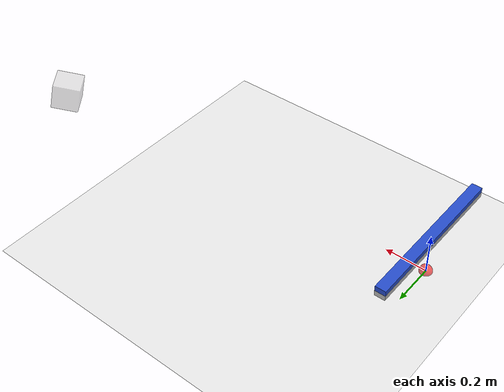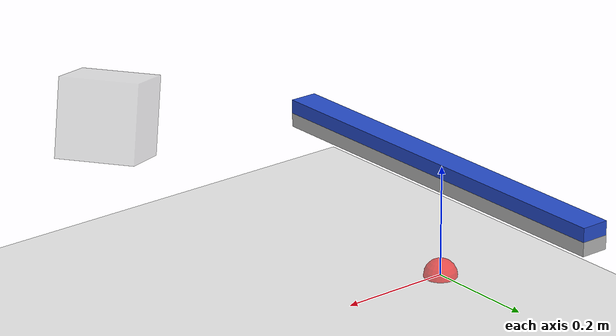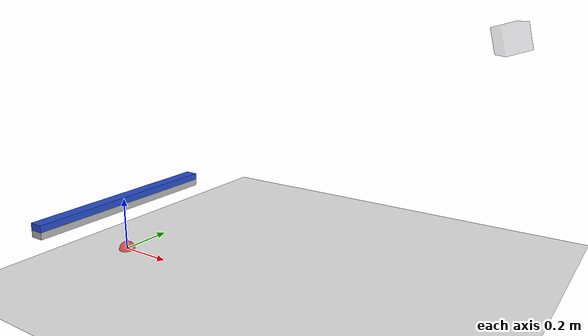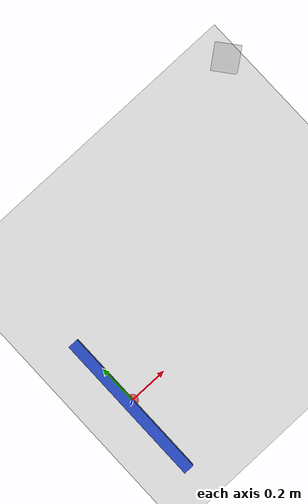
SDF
<sdf version="1.6">
 <world name="default">
  <include><uri>model://RightHandTarget</uri></include>
  <light name="sun" type="directional">
   <pose>0 0 10 0 -0 0</pose>
   <diffuse>0.8 0.8 0.8 1</diffuse>
   <specular>0.2 0.2 0.2 1</specular>
   <attenuation>
    <range>1000</range>
    <constant>0.9</constant>
    <linear>0.01</linear>
    <quadratic>0.001</quadratic>
   </attenuation>
   <direction>-0.5 0.1 -0.9</direction>
  </light>
  <model name="ground_plane">
   <static>1</static>
   <link name="link">
    <collision name="collision">
     <geometry><plane><normal>0 0 1</normal><size>100 100</size></plane></geometry>
     <surface><friction><ode><mu>100</mu><mu2>50</mu2></ode></friction></surface>
    </collision>
    <visual name="visual">
     <cast_shadows>0</cast_shadows>
     <geometry><plane><normal>0 0 1</normal><size>100 100</size></plane></geometry>
     <material>
      <script><uri>file://media/materials/scripts/gazebo.material</uri><name>Gazebo/White</name></script>
     </material>
    </visual>
   </link>
  </model>
  <physics name="default_physics" default="0" type="ode">
   <max_step_size>0.001</max_step_size>
   <real_time_factor>1</real_time_factor>
   <real_time_update_rate>1000</real_time_update_rate>
  </physics>
  <scene><ambient>1 1 1 1</ambient><background>1 1 1 1</background><shadows>1</shadows></scene>
  <spherical_coordinates>
   <surface_model>EARTH_WGS84</surface_model>
   <latitude_deg>0</latitude_deg>
   <longitude_deg>0</longitude_deg>
   <elevation>0</elevation>
   <heading_deg>0</heading_deg>
  </spherical_coordinates>
  <model name="chair">
   <pose>0 0 1e-06 0 -0 0</pose>
   <link name="chair::low_part">
    <pose>0 0 0.18 0 -0 0</pose>
    <inertial>
     <mass>1</mass>
     <inertia><ixx>1</ixx><ixy>0</ixy><ixz>0</ixz><iyy>1</iyy><iyz>0</iyz><izz>1</izz></inertia>
    </inertial>
    <collision name="collision_low"><geometry><box><size>0.05 0.75 0.025</size></box></geometry></collision>
    <visual name="visual_low"><geometry><box><size>0.05 0.75 0.025</size></box></geometry></visual>
   </link>
   <link name="chair::high_part">
    <pose>0 0 0.205 0 -0 0</pose>
    <inertial>
     <mass>1</mass>
     <inertia><ixx>1</ixx><ixy>0</ixy><ixz>0</ixz><iyy>1</iyy><iyz>0</iyz><izz>1</izz></inertia>
    </inertial>
    <collision name="collision_high">
     <geometry><box><size>0.05 0.75 0.025</size></box></geometry>
     <max_contacts>4</max_contacts>
     <surface>
      <contact>
       <ode>
        <soft_erp>0.2</soft_erp>
        <soft_cfm>0</soft_cfm>
        <kp>1.8e+06</kp>
        <kd>100</kd>
        <max_vel>100</max_vel>
        <min_depth>0.0001</min_depth>
       </ode>
      </contact>
      <friction><ode><mu>1</mu><mu2>1</mu2><fdir1>0 0 0</fdir1><slip1>0</slip1><slip2>0</slip2></ode></friction>
      <bounce><restitution_coefficient>0</restitution_coefficient><threshold>100000</threshold></bounce>
     </surface>
    </collision>
    <visual name="visual_high">
     <material><script><name>Gazebo/Blue</name><uri>__default__</uri></script></material>
     <geometry><box><size>0.05 0.75 0.025</size></box></geometry>
    </visual>
   </link>
   <joint name="chair::sensor_joint" type="fixed">
    <parent>chair::low_part</parent>
    <child>chair::high_part</child>
    <axis>
     <limit><lower>0</lower><upper>0</upper></limit>
     <xyz>0 0 0</xyz>
     <use_parent_model_frame>0</use_parent_model_frame>
    </axis>
    <sensor name="chair_ft_sensor" type="force_torque">
     <force_torque><frame>child</frame><measure_direction>parent_to_child</measure_direction></force_torque>
     <always_on>1</always_on>
     <visualize>1</visualize>
     <update_rate>100</update_rate>
     <plugin name="chair_FT_plugin" filename="libgazebo_yarp_forcetorque.so">
      <yarpConfigurationFile>model://icub_chair_world/chair/chair_gazebo_torque.ini</yarpConfigurationFile>
     </plugin>
    </sensor>
   </joint>
   <joint name="chair::fixed to ground" type="fixed">
    <parent>world</parent>
    <child>chair::low_part</child>
    <axis>
     <limit><lower>0</lower><upper>0</upper></limit>
     <xyz>0 0 0.18</xyz>
     <use_parent_model_frame>0</use_parent_model_frame>
    </axis>
   </joint>
  </model>
  <plugin name="ocra_gui_plugin" filename="libocra_gui_plugin.so"/>
  <gravity>0 0 -9.8</gravity>
  <magnetic_field>6e-06 2.3e-05 -4.2e-05</magnetic_field>
  <atmosphere type="adiabatic"/>
  <model name="yarp_camera">
   <pose>1.2 0.75 0.81 0.017888 0.238215 -2.47437</pose>
   <static>0</static>
   <link name="link">
    <gravity>0</gravity>
    <visual name="visual">
     <geometry><box><size>0.1 0.1 0.1</size></box></geometry>
     <transparency>0.6</transparency>
    </visual>
    <sensor name="yarp_camera_sensor" type="camera">
     <camera name="__default__">
      <horizontal_fov>0.5</horizontal_fov>
      <image><width>1080</width><height>1920</height></image>
      <clip><near>0.1</near><far>100</far></clip>
     </camera>
     <always_on>1</always_on>
     <update_rate>30</update_rate>
     <visualize>1</visualize>
     <plugin name="yarp_camera_control" filename="libyarp_camera_control.so"/>
    </sensor>
    <inertial>
     <inertia><ixx>1</ixx><ixy>0</ixy><ixz>0</ixz><iyy>1</iyy><iyz>0</iyz><izz>1</izz></inertia>
     <mass>1</mass>
    </inertial>
   </link>
   <plugin name="yarp_model_move" filename="libyarp_model_move.so"/>
  </model>
  <light name="user_point_light_0" type="point">
   <pose>-2.58082 -14.4305 1 0 -0 0</pose>
   <diffuse>0.5 0.5 0.5 1</diffuse>
   <specular>0.1 0.1 0.1 1</specular>
   <attenuation>
    <range>20</range>
    <constant>0.5</constant>
    <linear>0.01</linear>
    <quadratic>0.001</quadratic>
   </attenuation>
   <cast_shadows>0</cast_shadows>
   <direction>0 0 -1</direction>
  </light>
  <light name="user_point_light_1" type="point">
   <pose>-0.696301 12.2137 1 0 -0 0</pose>
   <diffuse>0.5 0.5 0.5 1</diffuse>
   <specular>0.1 0.1 0.1 1</specular>
   <attenuation>
    <range>20</range>
    <constant>0.5</constant>
    <linear>0.01</linear>
    <quadratic>0.001</quadratic>
   </attenuation>
   <cast_shadows>0</cast_shadows>
   <direction>0 0 -1</direction>
  </light>
 </world>
</sdf>

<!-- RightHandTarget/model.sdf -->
<sdf version="1.5">
  <model name="RightHandTarget">
    <static>true</static>
    <link name="link">

      <visual name="visual">
        <pose>0.0 0.0 0.0 0 0 0</pose>
        <geometry>
          <sphere>
              <radius>0.03</radius>
          </sphere>
        </geometry>

        <material>
            <ambient>   1.0 0.0 0.0 0.6 </ambient>
            <diffuse>   1.0 0.0 0.0 0.6 </diffuse>
        </material>

        <transparency>0.2</transparency>

      </visual>

    </link>
    <plugin name="yarp_model_move" filename="libyarp_model_move.so"/>
    <plugin name="task_optimization_change_color" filename="libtask_optimization_change_color.so"/>

  </model>
</sdf>
